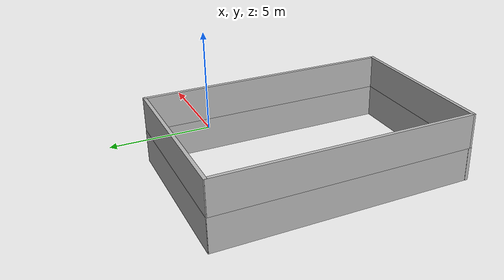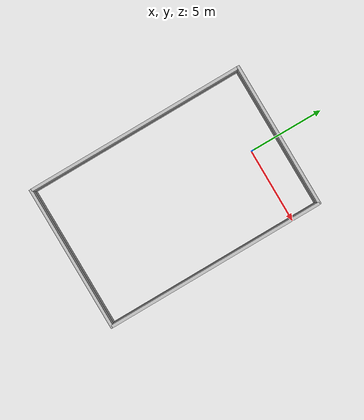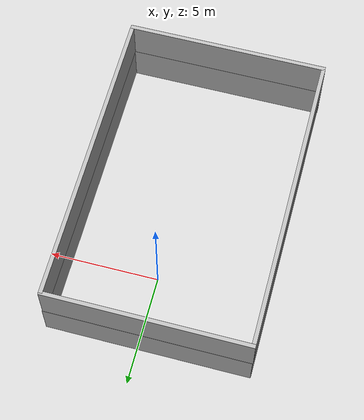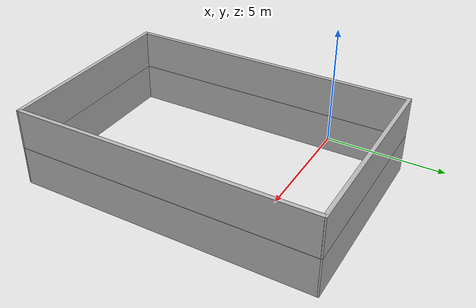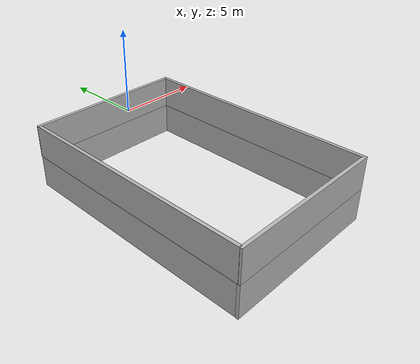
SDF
<sdf version="1.6">
 <world name="default">
  <physics name="default_physics" default="0" type="ode">
   <ode>
    <solver>
     <type>quick</type>
     <iters>20</iters>
     <sor>1</sor>
     <use_dynamic_moi_rescaling>0</use_dynamic_moi_rescaling>
    </solver>
    <constraints>
     <cfm>0</cfm>
     <erp>0.2</erp>
     <contact_max_correcting_vel>100</contact_max_correcting_vel>
     <contact_surface_layer>0</contact_surface_layer>
    </constraints>
   </ode>
   <real_time_update_rate>1000</real_time_update_rate>
   <max_step_size>0.001</max_step_size>
   <real_time_factor>1</real_time_factor>
   <max_contacts>20</max_contacts>
  </physics>
  <light name="sun" type="directional">
   <pose>0 0 10 0 -0 0</pose>
   <diffuse>0.8 0.8 0.8 1</diffuse>
   <specular>0.2 0.2 0.2 1</specular>
   <attenuation>
    <range>1000</range>
    <constant>0.9</constant>
    <linear>0.01</linear>
    <quadratic>0.001</quadratic>
   </attenuation>
   <direction>0.5 0.1 -0.9</direction>
  </light>
  <model name="wall_1_model">
   <pose>0 -13 -2.9 0 -0 0</pose>
   <static>1</static>
   <link name="wall_1_body">
    <inertial>
     <mass>1</mass>
     <inertia><ixx>1</ixx><ixy>0</ixy><ixz>0</ixz><iyy>1</iyy><iyz>0</iyz><izz>1</izz></inertia>
    </inertial>
    <collision name="collision"><geometry><box><size>10 0.2 2</size></box></geometry></collision>
    <visual name="visual"><geometry><box><size>10 0.2 2</size></box></geometry></visual>
    <velocity_decay><linear>0</linear><angular>0</angular></velocity_decay>
   </link>
  </model>
  <model name="wall_2_model">
   <pose>0.001644 1.98596 -0.9 0 0.000466 0</pose>
   <static>1</static>
   <link name="wall_2_body">
    <inertial>
     <mass>1</mass>
     <inertia><ixx>1</ixx><ixy>0</ixy><ixz>0</ixz><iyy>1</iyy><iyz>0</iyz><izz>1</izz></inertia>
    </inertial>
    <collision name="collision"><geometry><box><size>10 0.2 2</size></box></geometry></collision>
    <visual name="visual"><geometry><box><size>10 0.2 2</size></box></geometry></visual>
    <velocity_decay><linear>0</linear><angular>0</angular></velocity_decay>
   </link>
  </model>
  <model name="wall_3_model">
   <pose>-4.9048 -5.4617 -0.9 0 -0 0</pose>
   <static>1</static>
   <link name="wall_3_body">
    <inertial>
     <mass>1</mass>
     <inertia><ixx>1</ixx><ixy>0</ixy><ixz>0</ixz><iyy>1</iyy><iyz>0</iyz><izz>1</izz></inertia>
    </inertial>
    <collision name="collision"><geometry><box><size>0.2 15 2</size></box></geometry></collision>
    <visual name="visual"><geometry><box><size>0.2 15 2</size></box></geometry></visual>
    <velocity_decay><linear>0</linear><angular>0</angular></velocity_decay>
   </link>
  </model>
  <model name="wall_4_model">
   <pose>4.9188 -5.5 -0.9 0 -0 0</pose>
   <static>1</static>
   <link name="wall_4_body">
    <inertial>
     <mass>1</mass>
     <inertia><ixx>1</ixx><ixy>0</ixy><ixz>0</ixz><iyy>1</iyy><iyz>0</iyz><izz>1</izz></inertia>
    </inertial>
    <collision name="collision"><geometry><box><size>0.2 15 2</size></box></geometry></collision>
    <visual name="visual"><geometry><box><size>0.2 15 2</size></box></geometry></visual>
    <velocity_decay><linear>0</linear><angular>0</angular></velocity_decay>
   </link>
  </model>
  <scene><ambient>0.2 0.2 0.2 1</ambient><background>0.7 0.7 0.7 1</background><shadows>1</shadows></scene>
  <gravity>0 0 -9.81</gravity>
  <magnetic_field>6e-06 2.3e-05 -4.2e-05</magnetic_field>
  <atmosphere type="adiabatic"/>
  <spherical_coordinates>
   <surface_model>EARTH_WGS84</surface_model>
   <latitude_deg>0</latitude_deg>
   <longitude_deg>0</longitude_deg>
   <elevation>0</elevation>
   <heading_deg>0</heading_deg>
  </spherical_coordinates>
  <model name="wall_3_model_clone">
   <pose>-4.88728 -5.43505 -2.9 0 -0 0</pose>
   <static>1</static>
   <link name="wall_3_body">
    <inertial>
     <mass>1</mass>
     <inertia><ixx>1</ixx><ixy>0</ixy><ixz>0</ixz><iyy>1</iyy><iyz>0</iyz><izz>1</izz></inertia>
    </inertial>
    <collision name="collision"><geometry><box><size>0.2 15 2</size></box></geometry></collision>
    <visual name="visual"><geometry><box><size>0.2 15 2</size></box></geometry></visual>
    <velocity_decay><linear>0</linear><angular>0</angular></velocity_decay>
   </link>
  </model>
  <model name="wall_3_model_clone_clone">
   <pose>4.9362 -5.4882 -2.9 0 -0 0</pose>
   <static>1</static>
   <link name="wall_3_body">
    <inertial>
     <mass>1</mass>
     <inertia><ixx>1</ixx><ixy>0</ixy><ixz>0</ixz><iyy>1</iyy><iyz>0</iyz><izz>1</izz></inertia>
    </inertial>
    <collision name="collision"><geometry><box><size>0.2 15 2</size></box></geometry></collision>
    <visual name="visual"><geometry><box><size>0.2 15 2</size></box></geometry></visual>
    <velocity_decay><linear>0</linear><angular>0</angular></velocity_decay>
   </link>
  </model>
  <model name="wall_1_model_clone">
   <pose>0.01099 -13 -0.9 0 -0 0</pose>
   <static>1</static>
   <link name="wall_1_body">
    <inertial>
     <mass>1</mass>
     <inertia><ixx>1</ixx><ixy>0</ixy><ixz>0</ixz><iyy>1</iyy><iyz>0</iyz><izz>1</izz></inertia>
    </inertial>
    <collision name="collision"><geometry><box><size>10 0.2 2</size></box></geometry></collision>
    <visual name="visual"><geometry><box><size>10 0.2 2</size></box></geometry></visual>
    <velocity_decay><linear>0</linear><angular>0</angular></velocity_decay>
   </link>
  </model>
  <model name="wall_1_model_clone_0">
   <pose>0.029559 1.99298 -2.9 0 -0 0</pose>
   <static>1</static>
   <link name="wall_1_body">
    <inertial>
     <mass>1</mass>
     <inertia><ixx>1</ixx><ixy>0</ixy><ixz>0</ixz><iyy>1</iyy><iyz>0</iyz><izz>1</izz></inertia>
    </inertial>
    <collision name="collision"><geometry><box><size>10 0.2 2</size></box></geometry></collision>
    <visual name="visual"><geometry><box><size>10 0.2 2</size></box></geometry></visual>
    <velocity_decay><linear>0</linear><angular>0</angular></velocity_decay>
   </link>
  </model>
 </world>
</sdf>
